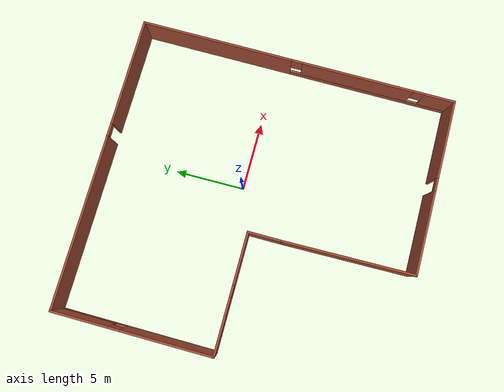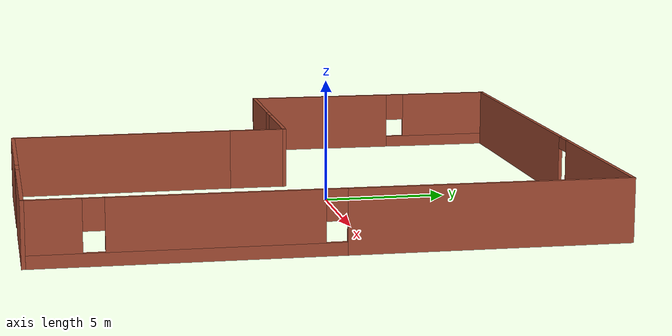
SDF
<?xml version='1.0'?>
<sdf version='1.6'>
  <model name='house'>
    <pose frame=''>-0.965 -1.44061 0 0 -0 0</pose>
    <link name='Wall_0'>
      <collision name='Wall_0_Collision'>
        <geometry>
          <box>
            <size>2.5 0.15 2.5</size>
          </box>
        </geometry>
        <pose frame=''>0 0 1.25 0 -0 0</pose>
      </collision>
      <visual name='Wall_0_Visual'>
        <pose frame=''>0 0 1.25 0 -0 0</pose>
        <geometry>
          <box>
            <size>2.5 0.15 2.5</size>
          </box>
        </geometry>
        <material>
          <script>
            <uri>file://media/materials/scripts/gazebo.material</uri>
            <name>Gazebo/Bricks</name>
          </script>
          <ambient>1 1 1 1</ambient>
        </material>
        <meta>
          <layer>0</layer>
        </meta>
      </visual>
      <pose frame=''>-2.075 -0.974391 0 0 -0 1.5708</pose>
    </link>
    <link name='Wall_1'>
      <pose frame=''>-6.25 0.200609 0 0 -0 3.14159</pose>
      <visual name='Wall_1_Visual_0'>
        <pose frame=''>-2.40207 0 1.25 0 -0 0</pose>
        <geometry>
          <box>
            <size>3.69587 0.15 2.5</size>
          </box>
        </geometry>
        <material>
          <script>
            <uri>file://media/materials/scripts/gazebo.material</uri>
            <name>Gazebo/Bricks</name>
          </script>
          <ambient>1 1 1 1</ambient>
        </material>
        <meta>
          <layer>0</layer>
        </meta>
      </visual>
      <collision name='Wall_1_Collision_0'>
        <geometry>
          <box>
            <size>3.69587 0.15 2.5</size>
          </box>
        </geometry>
        <pose frame=''>-2.40207 0 1.25 0 -0 0</pose>
      </collision>
      <visual name='Wall_1_Visual_1'>
        <pose frame=''>1.84793 0 0.25 0 -0 0</pose>
        <geometry>
          <box>
            <size>4.80413 0.15 0.5</size>
          </box>
        </geometry>
        <material>
          <script>
            <uri>file://media/materials/scripts/gazebo.material</uri>
            <name>Gazebo/Bricks</name>
          </script>
          <ambient>1 1 1 1</ambient>
        </material>
        <meta>
          <layer>0</layer>
        </meta>
      </visual>
      <collision name='Wall_1_Collision_1'>
        <geometry>
          <box>
            <size>4.80413 0.15 0.5</size>
          </box>
        </geometry>
        <pose frame=''>1.84793 0 0.25 0 -0 0</pose>
      </collision>
      <visual name='Wall_1_Visual_2'>
        <pose frame=''>2.24793 0 1.5 0 -0 0</pose>
        <geometry>
          <box>
            <size>4.00413 0.15 2</size>
          </box>
        </geometry>
        <material>
          <script>
            <uri>file://media/materials/scripts/gazebo.material</uri>
            <name>Gazebo/Bricks</name>
          </script>
          <ambient>1 1 1 1</ambient>
        </material>
        <meta>
          <layer>0</layer>
        </meta>
      </visual>
      <collision name='Wall_1_Collision_2'>
        <geometry>
          <box>
            <size>4.00413 0.15 2</size>
          </box>
        </geometry>
        <pose frame=''>2.24793 0 1.5 0 -0 0</pose>
      </collision>
      <visual name='Wall_1_Visual_3'>
        <pose frame=''>-0.154133 0 1.9 0 -0 0</pose>
        <geometry>
          <box>
            <size>0.8 0.15 1.2</size>
          </box>
        </geometry>
        <material>
          <script>
            <uri>file://media/materials/scripts/gazebo.material</uri>
            <name>Gazebo/Bricks</name>
          </script>
          <ambient>1 1 1 1</ambient>
        </material>
        <meta>
          <layer>0</layer>
        </meta>
      </visual>
      <collision name='Wall_1_Collision_3'>
        <geometry>
          <box>
            <size>0.8 0.15 1.2</size>
          </box>
        </geometry>
        <pose frame=''>-0.154133 0 1.9 0 -0 0</pose>
      </collision>
    </link>
    <link name='Wall_2'>
      <pose frame=''>-10.425 5.75061 0 0 -0 1.5708</pose>
      <visual name='Wall_2_Visual_0'>
        <pose frame=''>-2.40517 0 1.25 0 -0 0</pose>
        <geometry>
          <box>
            <size>6.43966 0.15 2.5</size>
          </box>
        </geometry>
        <material>
          <script>
            <uri>file://media/materials/scripts/gazebo.material</uri>
            <name>Gazebo/Bricks</name>
          </script>
          <ambient>1 1 1 1</ambient>
        </material>
        <meta>
          <layer>0</layer>
        </meta>
      </visual>
      <collision name='Wall_2_Collision_0'>
        <geometry>
          <box>
            <size>6.43966 0.15 2.5</size>
          </box>
        </geometry>
        <pose frame=''>-2.40517 0 1.25 0 -0 0</pose>
      </collision>
      <visual name='Wall_2_Visual_1'>
        <pose frame=''>3.21983 0 0.25 0 -0 0</pose>
        <geometry>
          <box>
            <size>4.81034 0.15 0.5</size>
          </box>
        </geometry>
        <material>
          <script>
            <uri>file://media/materials/scripts/gazebo.material</uri>
            <name>Gazebo/Bricks</name>
          </script>
          <ambient>1 1 1 1</ambient>
        </material>
        <meta>
          <layer>0</layer>
        </meta>
      </visual>
      <collision name='Wall_2_Collision_1'>
        <geometry>
          <box>
            <size>4.81034 0.15 0.5</size>
          </box>
        </geometry>
        <pose frame=''>3.21983 0 0.25 0 -0 0</pose>
      </collision>
      <visual name='Wall_2_Visual_2'>
        <pose frame=''>3.61983 0 1.5 0 -0 0</pose>
        <geometry>
          <box>
            <size>4.01034 0.15 2</size>
          </box>
        </geometry>
        <material>
          <script>
            <uri>file://media/materials/scripts/gazebo.material</uri>
            <name>Gazebo/Bricks</name>
          </script>
          <ambient>1 1 1 1</ambient>
        </material>
        <meta>
          <layer>0</layer>
        </meta>
      </visual>
      <collision name='Wall_2_Collision_2'>
        <geometry>
          <box>
            <size>4.01034 0.15 2</size>
          </box>
        </geometry>
        <pose frame=''>3.61983 0 1.5 0 -0 0</pose>
      </collision>
      <visual name='Wall_2_Visual_3'>
        <pose frame=''>1.21466 0 1.9 0 -0 0</pose>
        <geometry>
          <box>
            <size>0.8 0.15 1.2</size>
          </box>
        </geometry>
        <material>
          <script>
            <uri>file://media/materials/scripts/gazebo.material</uri>
            <name>Gazebo/Bricks</name>
          </script>
          <ambient>1 1 1 1</ambient>
        </material>
        <meta>
          <layer>0</layer>
        </meta>
      </visual>
      <collision name='Wall_2_Collision_3'>
        <geometry>
          <box>
            <size>0.8 0.15 1.2</size>
          </box>
        </geometry>
        <pose frame=''>1.21466 0 1.9 0 -0 0</pose>
      </collision>
    </link>
    <link name='Wall_3'>
      <pose frame=''>0 11.3006 0 0 -0 0</pose>
      <visual name='Wall_3_Visual_0'>
        <pose frame=''>-4.35942 0 1.25 0 -0 0</pose>
        <geometry>
          <box>
            <size>12.2812 0.15 2.5</size>
          </box>
        </geometry>
        <material>
          <script>
            <uri>file://media/materials/scripts/gazebo.material</uri>
            <name>Gazebo/Bricks</name>
          </script>
          <ambient>1 1 1 1</ambient>
        </material>
        <meta>
          <layer>0</layer>
        </meta>
      </visual>
      <collision name='Wall_3_Collision_0'>
        <geometry>
          <box>
            <size>12.2812 0.15 2.5</size>
          </box>
        </geometry>
        <pose frame=''>-4.35942 0 1.25 0 -0 0</pose>
      </collision>
      <visual name='Wall_3_Visual_1'>
        <pose frame=''>6.59058 0 1.25 0 -0 0</pose>
        <geometry>
          <box>
            <size>7.81885 0.15 2.5</size>
          </box>
        </geometry>
        <material>
          <script>
            <uri>file://media/materials/scripts/gazebo.material</uri>
            <name>Gazebo/Bricks</name>
          </script>
          <ambient>1 1 1 1</ambient>
        </material>
        <meta>
          <layer>0</layer>
        </meta>
      </visual>
      <collision name='Wall_3_Collision_1'>
        <geometry>
          <box>
            <size>7.81885 0.15 2.5</size>
          </box>
        </geometry>
        <pose frame=''>6.59058 0 1.25 0 -0 0</pose>
      </collision>
      <visual name='Wall_3_Visual_2'>
        <pose frame=''>2.23115 0 2.25 0 -0 0</pose>
        <geometry>
          <box>
            <size>0.9 0.15 0.5</size>
          </box>
        </geometry>
        <material>
          <script>
            <uri>file://media/materials/scripts/gazebo.material</uri>
            <name>Gazebo/Bricks</name>
          </script>
          <ambient>1 1 1 1</ambient>
        </material>
        <meta>
          <layer>0</layer>
        </meta>
      </visual>
      <collision name='Wall_3_Collision_2'>
        <geometry>
          <box>
            <size>0.9 0.15 0.5</size>
          </box>
        </geometry>
        <pose frame=''>2.23115 0 2.25 0 -0 0</pose>
      </collision>
    </link>
    <link name='Wall_4'>
      <pose frame=''>10.425 0.000609 0 0 0 -1.5708</pose>
      <visual name='Wall_4_Visual_0'>
        <pose frame=''>-5.90024 0 1.25 0 -0 0</pose>
        <geometry>
          <box>
            <size>10.9495 0.15 2.5</size>
          </box>
        </geometry>
        <material>
          <script>
            <uri>file://media/materials/scripts/gazebo.material</uri>
            <name>Gazebo/Bricks</name>
          </script>
          <ambient>1 1 1 1</ambient>
        </material>
        <meta>
          <layer>0</layer>
        </meta>
      </visual>
      <collision name='Wall_4_Collision_0'>
        <geometry>
          <box>
            <size>10.9495 0.15 2.5</size>
          </box>
        </geometry>
        <pose frame=''>-5.90024 0 1.25 0 -0 0</pose>
      </collision>
      <visual name='Wall_4_Visual_1'>
        <pose frame=''>5.47476 0 0.25 0 -0 0</pose>
        <geometry>
          <box>
            <size>11.8005 0.15 0.5</size>
          </box>
        </geometry>
        <material>
          <script>
            <uri>file://media/materials/scripts/gazebo.material</uri>
            <name>Gazebo/Bricks</name>
          </script>
          <ambient>1 1 1 1</ambient>
        </material>
        <meta>
          <layer>0</layer>
        </meta>
      </visual>
      <collision name='Wall_4_Collision_1'>
        <geometry>
          <box>
            <size>11.8005 0.15 0.5</size>
          </box>
        </geometry>
        <pose frame=''>5.47476 0 0.25 0 -0 0</pose>
      </collision>
      <visual name='Wall_4_Visual_2'>
        <pose frame=''>4.38091 0 1.5 0 -0 0</pose>
        <geometry>
          <box>
            <size>8.01276 0.15 2</size>
          </box>
        </geometry>
        <material>
          <script>
            <uri>file://media/materials/scripts/gazebo.material</uri>
            <name>Gazebo/Bricks</name>
          </script>
          <ambient>1 1 1 1</ambient>
        </material>
        <meta>
          <layer>0</layer>
        </meta>
      </visual>
      <collision name='Wall_4_Collision_2'>
        <geometry>
          <box>
            <size>8.01276 0.15 2</size>
          </box>
        </geometry>
        <pose frame=''>4.38091 0 1.5 0 -0 0</pose>
      </collision>
      <visual name='Wall_4_Visual_3'>
        <pose frame=''>10.2811 0 1.5 0 -0 0</pose>
        <geometry>
          <box>
            <size>2.18771 0.15 2</size>
          </box>
        </geometry>
        <material>
          <script>
            <uri>file://media/materials/scripts/gazebo.material</uri>
            <name>Gazebo/Bricks</name>
          </script>
          <ambient>1 1 1 1</ambient>
        </material>
        <meta>
          <layer>0</layer>
        </meta>
      </visual>
      <collision name='Wall_4_Collision_3'>
        <geometry>
          <box>
            <size>2.18771 0.15 2</size>
          </box>
        </geometry>
        <pose frame=''>10.2811 0 1.5 0 -0 0</pose>
      </collision>
      <visual name='Wall_4_Visual_4'>
        <pose frame=''>-0.025474 0 1.9 0 -0 0</pose>
        <geometry>
          <box>
            <size>0.8 0.15 1.2</size>
          </box>
        </geometry>
        <material>
          <script>
            <uri>file://media/materials/scripts/gazebo.material</uri>
            <name>Gazebo/Bricks</name>
          </script>
          <ambient>1 1 1 1</ambient>
        </material>
        <meta>
          <layer>0</layer>
        </meta>
      </visual>
      <collision name='Wall_4_Collision_4'>
        <geometry>
          <box>
            <size>0.8 0.15 1.2</size>
          </box>
        </geometry>
        <pose frame=''>-0.025474 0 1.9 0 -0 0</pose>
      </collision>
      <visual name='Wall_4_Visual_5'>
        <pose frame=''>8.78729 0 1.9 0 -0 0</pose>
        <geometry>
          <box>
            <size>0.8 0.15 1.2</size>
          </box>
        </geometry>
        <material>
          <script>
            <uri>file://media/materials/scripts/gazebo.material</uri>
            <name>Gazebo/Bricks</name>
          </script>
          <ambient>1 1 1 1</ambient>
        </material>
        <meta>
          <layer>0</layer>
        </meta>
      </visual>
      <collision name='Wall_4_Collision_5'>
        <geometry>
          <box>
            <size>0.8 0.15 1.2</size>
          </box>
        </geometry>
        <pose frame=''>8.78729 0 1.9 0 -0 0</pose>
      </collision>
    </link>
    <link name='Wall_5'>
      <pose frame=''>4.25 -11.2994 0 0 -0 3.14159</pose>
      <visual name='Wall_5_Visual_0'>
        <pose frame=''>-3.41615 0 1.25 0 -0 0</pose>
        <geometry>
          <box>
            <size>5.6677 0.15 2.5</size>
          </box>
        </geometry>
        <material>
          <script>
            <uri>file://media/materials/scripts/gazebo.material</uri>
            <name>Gazebo/Bricks</name>
          </script>
          <ambient>1 1 1 1</ambient>
        </material>
        <meta>
          <layer>0</layer>
        </meta>
      </visual>
      <collision name='Wall_5_Collision_0'>
        <geometry>
          <box>
            <size>5.6677 0.15 2.5</size>
          </box>
        </geometry>
        <pose frame=''>-3.41615 0 1.25 0 -0 0</pose>
      </collision>
      <visual name='Wall_5_Visual_1'>
        <pose frame=''>3.28385 0 1.25 0 -0 0</pose>
        <geometry>
          <box>
            <size>5.9323 0.15 2.5</size>
          </box>
        </geometry>
        <material>
          <script>
            <uri>file://media/materials/scripts/gazebo.material</uri>
            <name>Gazebo/Bricks</name>
          </script>
          <ambient>1 1 1 1</ambient>
        </material>
        <meta>
          <layer>0</layer>
        </meta>
      </visual>
      <collision name='Wall_5_Collision_1'>
        <geometry>
          <box>
            <size>5.9323 0.15 2.5</size>
          </box>
        </geometry>
        <pose frame=''>3.28385 0 1.25 0 -0 0</pose>
      </collision>
      <visual name='Wall_5_Visual_2'>
        <pose frame=''>-0.132298 0 2.25 0 -0 0</pose>
        <geometry>
          <box>
            <size>0.9 0.15 0.5</size>
          </box>
        </geometry>
        <material>
          <script>
            <uri>file://media/materials/scripts/gazebo.material</uri>
            <name>Gazebo/Bricks</name>
          </script>
          <ambient>1 1 1 1</ambient>
        </material>
        <meta>
          <layer>0</layer>
        </meta>
      </visual>
      <collision name='Wall_5_Collision_2'>
        <geometry>
          <box>
            <size>0.9 0.15 0.5</size>
          </box>
        </geometry>
        <pose frame=''>-0.132298 0 2.25 0 -0 0</pose>
      </collision>
    </link>
    <link name='Wall_6'>
      <collision name='Wall_6_Collision'>
        <geometry>
          <box>
            <size>9.30123 0.15 2.5</size>
          </box>
        </geometry>
        <pose frame=''>0 0 1.25 0 -0 0</pose>
      </collision>
      <visual name='Wall_6_Visual'>
        <pose frame=''>0 0 1.25 0 -0 0</pose>
        <geometry>
          <box>
            <size>9.30123 0.15 2.5</size>
          </box>
        </geometry>
        <material>
          <script>
            <uri>file://media/materials/scripts/gazebo.material</uri>
            <name>Gazebo/Bricks</name>
          </script>
          <ambient>1 1 1 1</ambient>
        </material>
        <meta>
          <layer>0</layer>
        </meta>
      </visual>
      <pose frame=''>-2 -6.72439 0 0 -0 1.58719</pose>
    </link>
    <static>1</static>
  </model>
</sdf>
